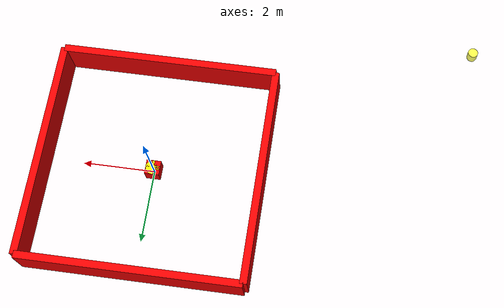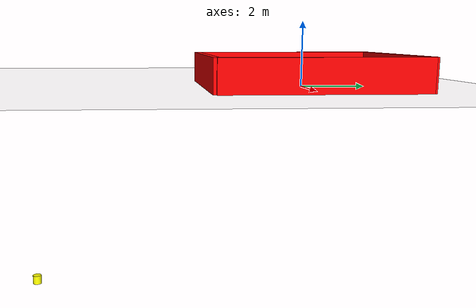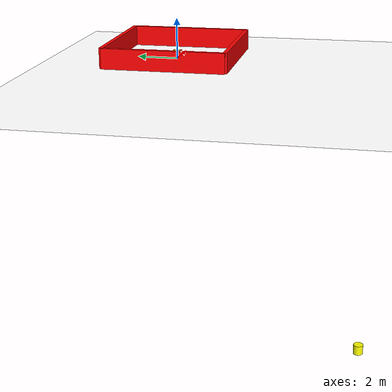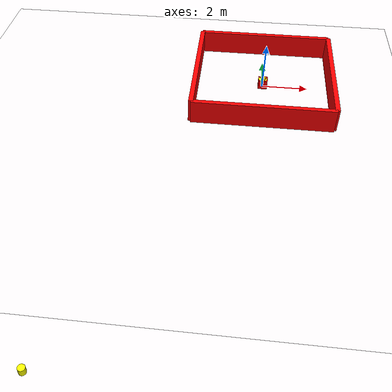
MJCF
<mujoco>
  <compiler inertiafromgeom="true" angle="degree" coordinate="local" />
  <option timestep="0.01" integrator="Euler"/>
  <default>
    <joint limited="false" armature="0" damping="0" />
    <geom conaffinity="1" contype="1" condim="1"  margin="0" friction="1 0.5 0.5" rgba="0.8 0.6 0.4 1" density="100" />
  </default>
  <asset>
    <texture type="skybox" builtin="gradient" width="100" height="100" rgb1="1 1 1" rgb2="0 0 0" />
    <texture name="texgeom" type="cube" builtin="flat" mark="cross" width="127" height="1278" rgb1="0.8 0.6 0.4" rgb2="0.8 0.6 0.4" markrgb="1 1 1" random="0.01" />
    <texture name="texplane" type="2d" builtin="checker" rgb1="0 0 0" rgb2="0.8 0.8 0.8" width="100" height="100" />
    <material name='MatPlane' texture="texplane" shininess="1" texrepeat="30 30" specular="1"  reflectance="0.5" />
    <material name='geom' texture="texgeom" texuniform="true" />
  </asset>

  <worldbody>
    <light directional="true" cutoff="100" exponent="1" diffuse="1 1 1" specular=".1 .1 .1" pos="0 0 1.3" dir="-0 0 -1.3" />
    <geom name='floor'  pos='0 0 0' size='40 40 40' type='plane' conaffinity='1' rgba='1 1 1 1' condim='3' />
    <geom name='left_wall' pos='-3 0 0.5' size='0.1 3 0.5' type='box' conaffinity='1' rgba='1 0 0 1' condim='1' contype='1' />
    <geom name='right_wall' pos='3 0 0.5' size='0.1 3 0.5' type='box' conaffinity='1' rgba='1 0 0 1' condim='1' contype='1' />
    <geom name='front_wall' pos='0 3 0.5' size='3 0.1 0.5' type='box' conaffinity='1' rgba='1 0 0 1' condim='1' contype='1' />
    <geom name='back_wall' pos='0 -3 0.5' size='3 0.1 0.5' type='box' conaffinity='1' rgba='1 0 0 1' condim='1' contype='1' />

    <body name="fist" pos="0 0 0">
      <geom name="pointbody" type="sphere" size="0.1" pos="0 0 0.1" />
      <joint name='ballx' type='slide' axis='1 0 0' pos='0 0 0' />
      <joint name='bally' type='slide' axis='0 1 0' pos='0 0 0' />
    </body>

    <body name="redcube" pos="0 0 0">
      <geom name="rc" type="box" size="0.2 0.2 0.2" pos="0 0 0.2" rgba="1 0 0 1" conaffinity="0" contype="0"/>
      <joint name='rcx' type='slide' axis='1 0 0' pos='0 0 0' />
      <joint name='rcy' type='slide' axis='0 1 0' pos='0 0 0' />
    </body>

    <body name="bluecube" pos="0 0 0">
      <geom name="bc" type="box" size="0.2 0.2 0.2" pos="0 0 0.2" rgba="0 0 1 1" conaffinity="0" contype="0"/>
      <joint name='bcx' type='slide' axis='1 0 0' pos='0 0 0' />
      <joint name='bcy' type='slide' axis='0 1 0' pos='0 0 0' />
    </body>

    <body name="blacksphere" pos="0 0 0">
      <geom name="bs" type="sphere" size="0.2" pos="0 0 0.2" rgba="0 0 0 1" conaffinity="0" contype="0"/>
      <joint name='bsx' type='slide' axis='1 0 0' pos='0 0 0' />
      <joint name='bsy' type='slide' axis='0 1 0' pos='0 0 0' />
    </body>

    <body name="yellowcylinder" pos="0 0 0">
      <geom name="yc" type="cylinder" size="0.2 0.2" pos="0 0 0.2" rgba="1 1 0 1" conaffinity="0" contype="0"/>
      <joint name='ycx' type='slide' axis='1 0 0' pos='0 0 0' />
      <joint name='ycy' type='slide' axis='0 1 0' pos='0 0 0' />
    </body>

    <geom name="tgt1" type="plane" size="0.2 0.2 0.01" pos="-2.5 0 0.01" rgba="0 0 1 1"/>
    <geom name="tgt2" type="plane" size="0.2 0.2 0.01" pos="-2.5 1 0.01" rgba="0 0 0 1" />
    <geom name="tgt3" type="plane" size="0.2 0.2 0.01" pos="-2.5 2 0.01" rgba="0.4 0.2 1 1"/>
    <geom name="tgt4" type="plane" size="0.2 0.2 0.01" pos="-2.5 -1 0.01" rgba="1 0.3 0 1"/>

    <body name="random" pos="-10 -10 -10">
      <geom name="randombody" type="cylinder" size="0.2 0.2" pos="0 0 0.2" rgba="1 1 0 1" conaffinity="0" contype="0"/>
      <joint name='random_joint' type='slide' axis='0 1 0' pos='0 0 0' />
    </body>

  </worldbody>

  <actuator>
    <motor joint='ballx' ctrlrange="-1 1" ctrllimited="true" />
    <motor joint='bally' ctrlrange="-1 1" ctrllimited="true" />
    <motor joint='random_joint' ctrlrange="-1 1" ctrllimited="true" />
  </actuator>

</mujoco>
